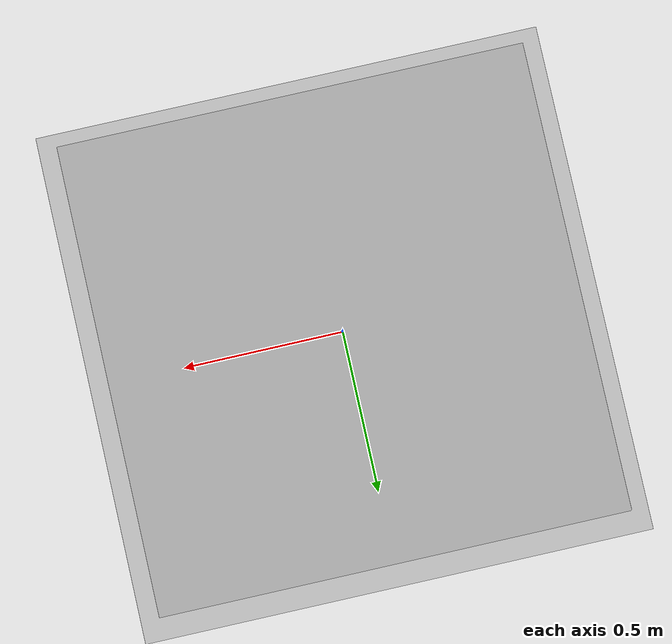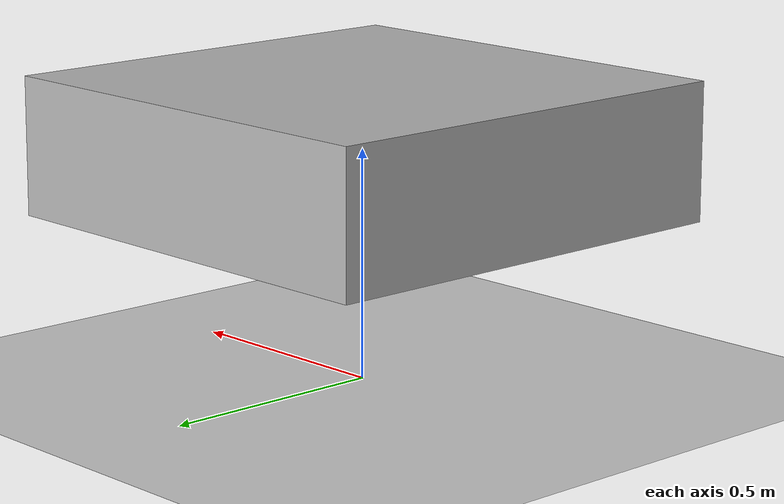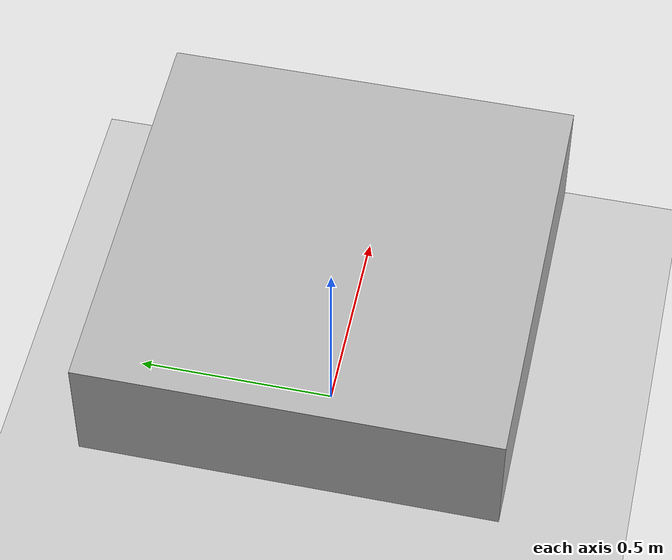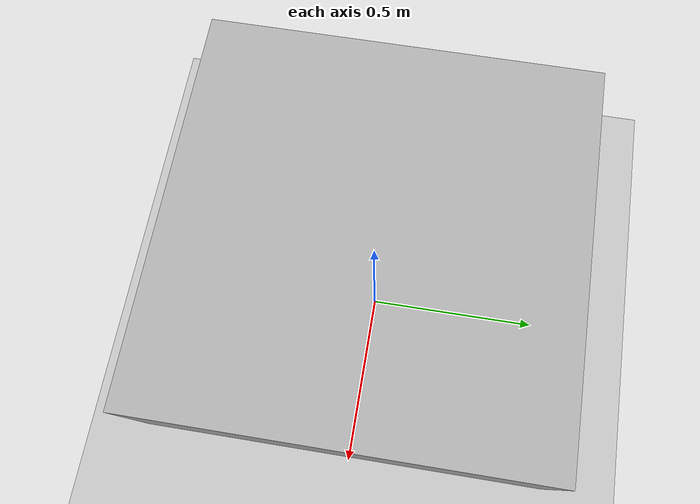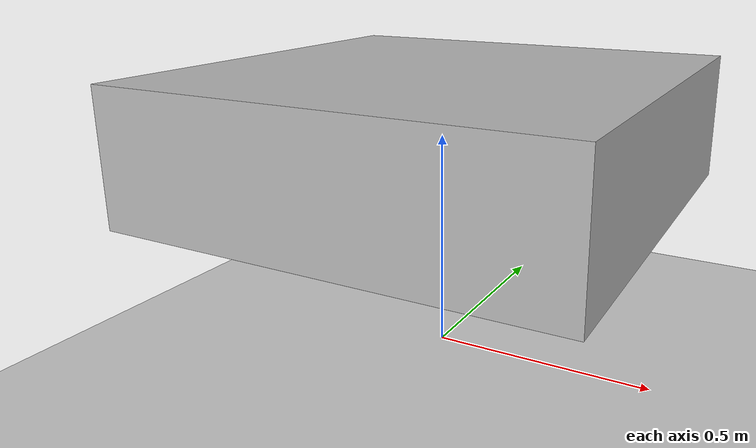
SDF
<?xml version="1.0" ?>
<sdf version="1.5">
  <world name="default">
    <!-- A global light source -->
    <include>
      <uri>model://sun</uri>
    </include>
    <!-- A ground plane -->
    <include>
      <uri>model://ground_plane</uri>
    </include>
    <include>
      <uri>model://asphalt_plane</uri>
    </include>

    <plugin name="GazeboPlugin" filename="/home/user/Desktop/DroneControl/GazeboPlugin/build/libGazeboPlugin.so"/>

    <model name="box">
      <pose>0 0 0.5 0 0 0</pose>
      <link name="link">
        <collision name="collision">
          <geometry>
            <box>
              <size>1 1 0.3</size>
            </box>
          </geometry>
        </collision>

        <visual name="visual">
          <geometry>
            <box>
              <size>1 1 0.3</size>
            </box>
          </geometry>
        </visual>
      </link>
      <plugin name="libcircle_motion_plugin" filename="/home/user/Desktop/DroneControl/CircleMotionPlugin/build/libcircle_motion_plugin.so"/>
    </model>

    <physics name='default_physics' default='0' type='ode'>
      <gravity>0 0 -9.8066</gravity>
      <ode>
        <solver>
          <type>quick</type>
          <iters>10</iters>
          <sor>1.3</sor>
          <use_dynamic_moi_rescaling>0</use_dynamic_moi_rescaling>
        </solver>
        <constraints>
          <cfm>0</cfm>
          <erp>0.2</erp>
          <contact_max_correcting_vel>100</contact_max_correcting_vel>
          <contact_surface_layer>0.001</contact_surface_layer>
        </constraints>
      </ode>
      <max_step_size>0.004</max_step_size>
      <real_time_factor>1</real_time_factor>
      <real_time_update_rate>250</real_time_update_rate>
      <magnetic_field>6.0e-6 2.3e-5 -4.2e-5</magnetic_field>
    </physics>
  </world>
</sdf>
